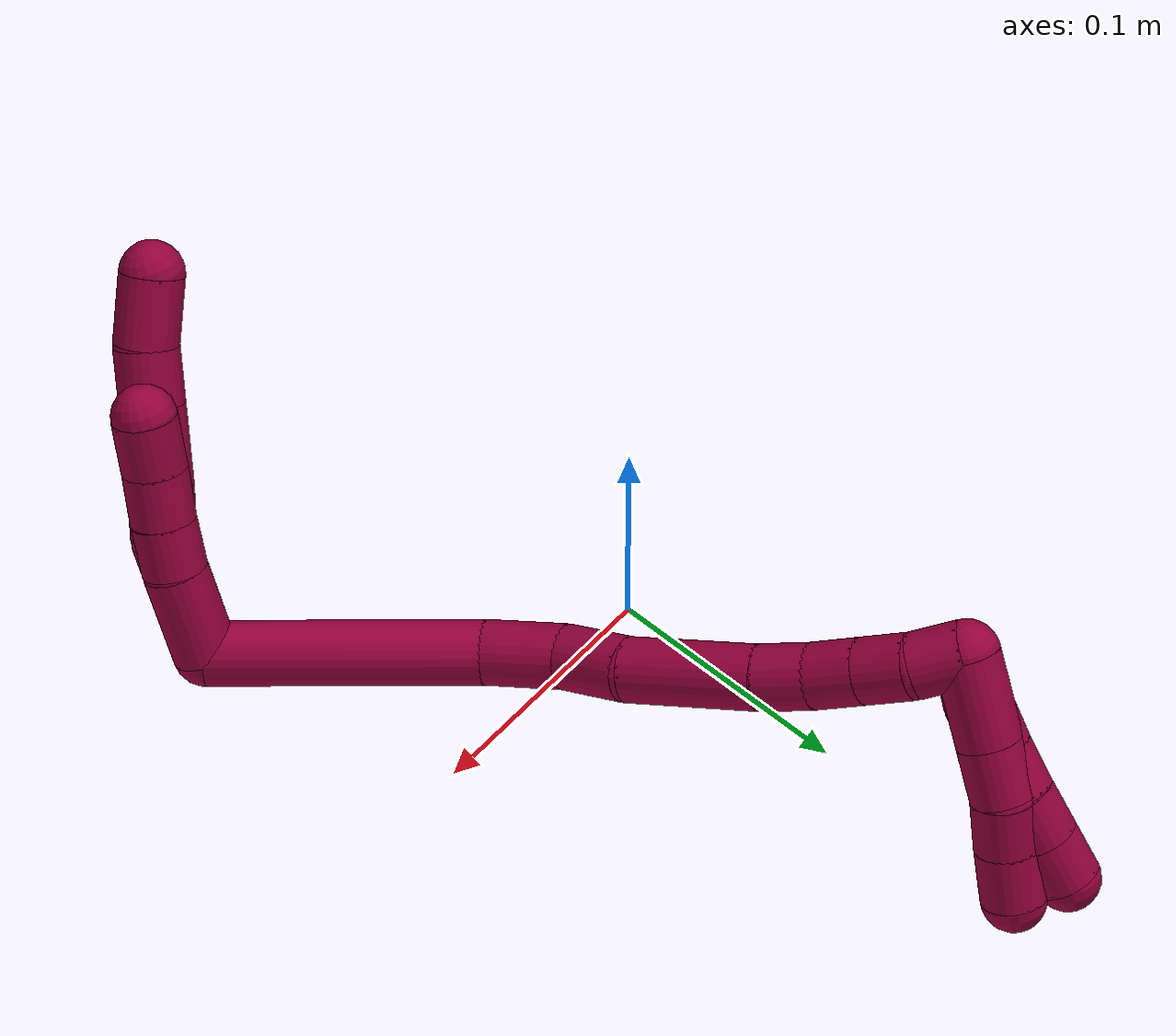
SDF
<sdf version="1.7">
 <world name="default">
  <model name="8">
   <static>0</static>
   <link name="8">
    <collision name="collision-cylinder-e_1_2_8">
     <pose>-0.001476 -0.002098 0.024251 0.086309 -0.060553 -0.002616</pose>
     <geometry><cylinder><radius>0.0125</radius><length>0.048772</length></cylinder></geometry>
     <surface>
      <friction><ode><mu>1.16</mu><mu2>1.16</mu2><slip1>0</slip1><slip2>0</slip2></ode></friction>
      <contact><ode><kp>1e+06</kp><kd>1</kd><max_vel>0</max_vel><min_depth>0.001</min_depth></ode></contact>
     </surface>
    </collision>
    <visual name="visual-cylinder-e_1_2_8">
     <pose>-0.001476 -0.002098 0.024251 0.086309 -0.060553 -0.002616</pose>
     <geometry><cylinder><radius>0.0125</radius><length>0.048772</length></cylinder></geometry>
     <material><ambient>0.584314 0 0.227451 1</ambient></material>
    </visual>
    <collision name="collision-cylinder-e_2_8_9">
     <pose>-0.006339 -0.0039 0.057914 -0.031525 -0.345296 0.005498</pose>
     <geometry><cylinder><radius>0.0125</radius><length>0.020017</length></cylinder></geometry>
     <surface>
      <friction><ode><mu>1.16</mu><mu2>1.16</mu2><slip1>0</slip1><slip2>0</slip2></ode></friction>
      <contact><ode><kp>1e+06</kp><kd>1</kd><max_vel>0</max_vel><min_depth>0.001</min_depth></ode></contact>
     </surface>
    </collision>
    <visual name="visual-cylinder-e_2_8_9">
     <pose>-0.006339 -0.0039 0.057914 -0.031525 -0.345296 0.005498</pose>
     <geometry><cylinder><radius>0.0125</radius><length>0.020017</length></cylinder></geometry>
     <material><ambient>0.584314 0 0.227451 1</ambient></material>
    </visual>
    <collision name="collision-cylinder-e_3_9_10">
     <pose>-0.013813 -0.002904 0.082504 -0.046024 -0.262745 0.006082</pose>
     <geometry><cylinder><radius>0.0125</radius><length>0.031466</length></cylinder></geometry>
     <surface>
      <friction><ode><mu>1.16</mu><mu2>1.16</mu2><slip1>0</slip1><slip2>0</slip2></ode></friction>
      <contact><ode><kp>1e+06</kp><kd>1</kd><max_vel>0</max_vel><min_depth>0.001</min_depth></ode></contact>
     </surface>
    </collision>
    <visual name="visual-cylinder-e_3_9_10">
     <pose>-0.013813 -0.002904 0.082504 -0.046024 -0.262745 0.006082</pose>
     <geometry><cylinder><radius>0.0125</radius><length>0.031466</length></cylinder></geometry>
     <material><ambient>0.584314 0 0.227451 1</ambient></material>
    </visual>
    <collision name="collision-cylinder-e_4_10_11">
     <pose>-0.020816 -0.001707 0.108543 -0.045777 -0.262079 0.006034</pose>
     <geometry><cylinder><radius>0.0125</radius><length>0.022516</length></cylinder></geometry>
     <surface>
      <friction><ode><mu>1.16</mu><mu2>1.16</mu2><slip1>0</slip1><slip2>0</slip2></ode></friction>
      <contact><ode><kp>1e+06</kp><kd>1</kd><max_vel>0</max_vel><min_depth>0.001</min_depth></ode></contact>
     </surface>
    </collision>
    <visual name="visual-cylinder-e_4_10_11">
     <pose>-0.020816 -0.001707 0.108543 -0.045777 -0.262079 0.006034</pose>
     <geometry><cylinder><radius>0.0125</radius><length>0.022516</length></cylinder></geometry>
     <material><ambient>0.584314 0 0.227451 1</ambient></material>
    </visual>
    <collision name="collision-cylinder-e_5_11_6">
     <pose>-0.02867 0.001276 0.131847 -0.197196 -0.371119 0.037134</pose>
     <geometry><cylinder><radius>0.0125</radius><length>0.02723</length></cylinder></geometry>
     <surface>
      <friction><ode><mu>1.16</mu><mu2>1.16</mu2><slip1>0</slip1><slip2>0</slip2></ode></friction>
      <contact><ode><kp>1e+06</kp><kd>1</kd><max_vel>0</max_vel><min_depth>0.001</min_depth></ode></contact>
     </surface>
    </collision>
    <visual name="visual-cylinder-e_5_11_6">
     <pose>-0.02867 0.001276 0.131847 -0.197196 -0.371119 0.037134</pose>
     <geometry><cylinder><radius>0.0125</radius><length>0.02723</length></cylinder></geometry>
     <material><ambient>0.584314 0 0.227451 1</ambient></material>
    </visual>
    <collision name="collision-cylinder-e_1_2_12">
     <pose>0.000305 -0.000179 0.018521 0.009651 0.016445 7.9e-05</pose>
     <geometry><cylinder><radius>0.0125</radius><length>0.037048</length></cylinder></geometry>
     <surface>
      <friction><ode><mu>1.16</mu><mu2>1.16</mu2><slip1>0</slip1><slip2>0</slip2></ode></friction>
      <contact><ode><kp>1e+06</kp><kd>1</kd><max_vel>0</max_vel><min_depth>0.001</min_depth></ode></contact>
     </surface>
    </collision>
    <visual name="visual-cylinder-e_1_2_12">
     <pose>0.000305 -0.000179 0.018521 0.009651 0.016445 7.9e-05</pose>
     <geometry><cylinder><radius>0.0125</radius><length>0.037048</length></cylinder></geometry>
     <material><ambient>0.584314 0 0.227451 1</ambient></material>
    </visual>
    <collision name="collision-cylinder-e_2_12_13">
     <pose>-0.000438 -6.9e-05 0.047158 -0.028548 -0.103085 0.001473</pose>
     <geometry><cylinder><radius>0.0125</radius><length>0.020349</length></cylinder></geometry>
     <surface>
      <friction><ode><mu>1.16</mu><mu2>1.16</mu2><slip1>0</slip1><slip2>0</slip2></ode></friction>
      <contact><ode><kp>1e+06</kp><kd>1</kd><max_vel>0</max_vel><min_depth>0.001</min_depth></ode></contact>
     </surface>
    </collision>
    <visual name="visual-cylinder-e_2_12_13">
     <pose>-0.000438 -6.9e-05 0.047158 -0.028548 -0.103085 0.001473</pose>
     <geometry><cylinder><radius>0.0125</radius><length>0.020349</length></cylinder></geometry>
     <material><ambient>0.584314 0 0.227451 1</ambient></material>
    </visual>
    <collision name="collision-cylinder-e_3_13_14">
     <pose>-0.002853 0.001072 0.067579 -0.082472 -0.131577 0.005437</pose>
     <geometry><cylinder><radius>0.0125</radius><length>0.020861</length></cylinder></geometry>
     <surface>
      <friction><ode><mu>1.16</mu><mu2>1.16</mu2><slip1>0</slip1><slip2>0</slip2></ode></friction>
      <contact><ode><kp>1e+06</kp><kd>1</kd><max_vel>0</max_vel><min_depth>0.001</min_depth></ode></contact>
     </surface>
    </collision>
    <visual name="visual-cylinder-e_3_13_14">
     <pose>-0.002853 0.001072 0.067579 -0.082472 -0.131577 0.005437</pose>
     <geometry><cylinder><radius>0.0125</radius><length>0.020861</length></cylinder></geometry>
     <material><ambient>0.584314 0 0.227451 1</ambient></material>
    </visual>
    <collision name="collision-cylinder-e_4_14_5">
     <pose>-0.004848 0.003128 0.08867 -0.111154 -0.057665 0.003209</pose>
     <geometry><cylinder><radius>0.0125</radius><length>0.021742</length></cylinder></geometry>
     <surface>
      <friction><ode><mu>1.16</mu><mu2>1.16</mu2><slip1>0</slip1><slip2>0</slip2></ode></friction>
      <contact><ode><kp>1e+06</kp><kd>1</kd><max_vel>0</max_vel><min_depth>0.001</min_depth></ode></contact>
     </surface>
    </collision>
    <visual name="visual-cylinder-e_4_14_5">
     <pose>-0.004848 0.003128 0.08867 -0.111154 -0.057665 0.003209</pose>
     <geometry><cylinder><radius>0.0125</radius><length>0.021742</length></cylinder></geometry>
     <material><ambient>0.584314 0 0.227451 1</ambient></material>
    </visual>
    <collision name="collision-cylinder-e_1_2_15">
     <pose>-0.027029 0.043662 -0.012545 -1.85058 -0.53672 0.700183</pose>
     <geometry><cylinder><radius>0.0125</radius><length>0.105723</length></cylinder></geometry>
     <surface>
      <friction><ode><mu>1.16</mu><mu2>1.16</mu2><slip1>0</slip1><slip2>0</slip2></ode></friction>
      <contact><ode><kp>1e+06</kp><kd>1</kd><max_vel>0</max_vel><min_depth>0.001</min_depth></ode></contact>
     </surface>
    </collision>
    <visual name="visual-cylinder-e_1_2_15">
     <pose>-0.027029 0.043662 -0.012545 -1.85058 -0.53672 0.700183</pose>
     <geometry><cylinder><radius>0.0125</radius><length>0.105723</length></cylinder></geometry>
     <material><ambient>0.584314 0 0.227451 1</ambient></material>
    </visual>
    <collision name="collision-cylinder-e_2_15_16">
     <pose>-0.058306 0.102716 -0.027338 -1.71581 -0.266556 0.3077</pose>
     <geometry><cylinder><radius>0.0125</radius><length>0.032249</length></cylinder></geometry>
     <surface>
      <friction><ode><mu>1.16</mu><mu2>1.16</mu2><slip1>0</slip1><slip2>0</slip2></ode></friction>
      <contact><ode><kp>1e+06</kp><kd>1</kd><max_vel>0</max_vel><min_depth>0.001</min_depth></ode></contact>
     </surface>
    </collision>
    <visual name="visual-cylinder-e_2_15_16">
     <pose>-0.058306 0.102716 -0.027338 -1.71581 -0.266556 0.3077</pose>
     <geometry><cylinder><radius>0.0125</radius><length>0.032249</length></cylinder></geometry>
     <material><ambient>0.584314 0 0.227451 1</ambient></material>
    </visual>
    <collision name="collision-cylinder-e_3_16_17">
     <pose>-0.062108 0.132177 -0.030853 -1.66056 0.031496 -0.034457</pose>
     <geometry><cylinder><radius>0.0125</radius><length>0.028267</length></cylinder></geometry>
     <surface>
      <friction><ode><mu>1.16</mu><mu2>1.16</mu2><slip1>0</slip1><slip2>0</slip2></ode></friction>
      <contact><ode><kp>1e+06</kp><kd>1</kd><max_vel>0</max_vel><min_depth>0.001</min_depth></ode></contact>
     </surface>
    </collision>
    <visual name="visual-cylinder-e_3_16_17">
     <pose>-0.062108 0.132177 -0.030853 -1.66056 0.031496 -0.034457</pose>
     <geometry><cylinder><radius>0.0125</radius><length>0.028267</length></cylinder></geometry>
     <material><ambient>0.584314 0 0.227451 1</ambient></material>
    </visual>
    <collision name="collision-cylinder-e_4_17_18">
     <pose>-0.066334 0.172144 -0.034402 -1.65871 -0.177778 0.194039</pose>
     <geometry><cylinder><radius>0.0125</radius><length>0.052827</length></cylinder></geometry>
     <surface>
      <friction><ode><mu>1.16</mu><mu2>1.16</mu2><slip1>0</slip1><slip2>0</slip2></ode></friction>
      <contact><ode><kp>1e+06</kp><kd>1</kd><max_vel>0</max_vel><min_depth>0.001</min_depth></ode></contact>
     </surface>
    </collision>
    <visual name="visual-cylinder-e_4_17_18">
     <pose>-0.066334 0.172144 -0.034402 -1.65871 -0.177778 0.194039</pose>
     <geometry><cylinder><radius>0.0125</radius><length>0.052827</length></cylinder></geometry>
     <material><ambient>0.584314 0 0.227451 1</ambient></material>
    </visual>
    <collision name="collision-cylinder-e_5_18_19">
     <pose>-0.073611 0.208067 -0.03705 -1.6072 -0.25409 0.263405</pose>
     <geometry><cylinder><radius>0.0125</radius><length>0.020732</length></cylinder></geometry>
     <surface>
      <friction><ode><mu>1.16</mu><mu2>1.16</mu2><slip1>0</slip1><slip2>0</slip2></ode></friction>
      <contact><ode><kp>1e+06</kp><kd>1</kd><max_vel>0</max_vel><min_depth>0.001</min_depth></ode></contact>
     </surface>
    </collision>
    <visual name="visual-cylinder-e_5_18_19">
     <pose>-0.073611 0.208067 -0.03705 -1.6072 -0.25409 0.263405</pose>
     <geometry><cylinder><radius>0.0125</radius><length>0.020732</length></cylinder></geometry>
     <material><ambient>0.584314 0 0.227451 1</ambient></material>
    </visual>
    <collision name="collision-cylinder-e_6_19_20">
     <pose>-0.078262 0.227918 -0.036694 -1.49756 -0.204726 0.190347</pose>
     <geometry><cylinder><radius>0.0125</radius><length>0.020121</length></cylinder></geometry>
     <surface>
      <friction><ode><mu>1.16</mu><mu2>1.16</mu2><slip1>0</slip1><slip2>0</slip2></ode></friction>
      <contact><ode><kp>1e+06</kp><kd>1</kd><max_vel>0</max_vel><min_depth>0.001</min_depth></ode></contact>
     </surface>
    </collision>
    <visual name="visual-cylinder-e_6_19_20">
     <pose>-0.078262 0.227918 -0.036694 -1.49756 -0.204726 0.190347</pose>
     <geometry><cylinder><radius>0.0125</radius><length>0.020121</length></cylinder></geometry>
     <material><ambient>0.584314 0 0.227451 1</ambient></material>
    </visual>
    <collision name="collision-cylinder-e_7_20_21">
     <pose>-0.082235 0.247533 -0.035206 -1.49257 -0.193802 0.179287</pose>
     <geometry><cylinder><radius>0.0125</radius><length>0.020018</length></cylinder></geometry>
     <surface>
      <friction><ode><mu>1.16</mu><mu2>1.16</mu2><slip1>0</slip1><slip2>0</slip2></ode></friction>
      <contact><ode><kp>1e+06</kp><kd>1</kd><max_vel>0</max_vel><min_depth>0.001</min_depth></ode></contact>
     </surface>
    </collision>
    <visual name="visual-cylinder-e_7_20_21">
     <pose>-0.082235 0.247533 -0.035206 -1.49257 -0.193802 0.179287</pose>
     <geometry><cylinder><radius>0.0125</radius><length>0.020018</length></cylinder></geometry>
     <material><ambient>0.584314 0 0.227451 1</ambient></material>
    </visual>
    <collision name="collision-cylinder-e_8_21_1">
     <pose>-0.08845 0.266344 -0.033486 -1.46565 -0.441583 0.398654</pose>
     <geometry><cylinder><radius>0.0125</radius><length>0.020063</length></cylinder></geometry>
     <surface>
      <friction><ode><mu>1.16</mu><mu2>1.16</mu2><slip1>0</slip1><slip2>0</slip2></ode></friction>
      <contact><ode><kp>1e+06</kp><kd>1</kd><max_vel>0</max_vel><min_depth>0.001</min_depth></ode></contact>
     </surface>
    </collision>
    <visual name="visual-cylinder-e_8_21_1">
     <pose>-0.08845 0.266344 -0.033486 -1.46565 -0.441583 0.398654</pose>
     <geometry><cylinder><radius>0.0125</radius><length>0.020063</length></cylinder></geometry>
     <material><ambient>0.584314 0 0.227451 1</ambient></material>
    </visual>
    <collision name="collision-cylinder-e_1_1_22">
     <pose>-0.090392 0.277077 -0.04971 -3.04216 0.134993 -1.87251</pose>
     <geometry><cylinder><radius>0.0125</radius><length>0.034839</length></cylinder></geometry>
     <surface>
      <friction><ode><mu>1.16</mu><mu2>1.16</mu2><slip1>0</slip1><slip2>0</slip2></ode></friction>
      <contact><ode><kp>1e+06</kp><kd>1</kd><max_vel>0</max_vel><min_depth>0.001</min_depth></ode></contact>
     </surface>
    </collision>
    <visual name="visual-cylinder-e_1_1_22">
     <pose>-0.090392 0.277077 -0.04971 -3.04216 0.134993 -1.87251</pose>
     <geometry><cylinder><radius>0.0125</radius><length>0.034839</length></cylinder></geometry>
     <material><ambient>0.584314 0 0.227451 1</ambient></material>
    </visual>
    <collision name="collision-cylinder-e_2_22_23">
     <pose>-0.086559 0.27988 -0.07808 -3.04456 0.131624 -1.87168</pose>
     <geometry><cylinder><radius>0.0125</radius><length>0.022691</length></cylinder></geometry>
     <surface>
      <friction><ode><mu>1.16</mu><mu2>1.16</mu2><slip1>0</slip1><slip2>0</slip2></ode></friction>
      <contact><ode><kp>1e+06</kp><kd>1</kd><max_vel>0</max_vel><min_depth>0.001</min_depth></ode></contact>
     </surface>
    </collision>
    <visual name="visual-cylinder-e_2_22_23">
     <pose>-0.086559 0.27988 -0.07808 -3.04456 0.131624 -1.87168</pose>
     <geometry><cylinder><radius>0.0125</radius><length>0.022691</length></cylinder></geometry>
     <material><ambient>0.584314 0 0.227451 1</ambient></material>
    </visual>
    <collision name="collision-cylinder-e_3_23_24">
     <pose>-0.084131 0.279807 -0.099485 3.02822 0.091129 1.35373</pose>
     <geometry><cylinder><radius>0.0125</radius><length>0.020639</length></cylinder></geometry>
     <surface>
      <friction><ode><mu>1.16</mu><mu2>1.16</mu2><slip1>0</slip1><slip2>0</slip2></ode></friction>
      <contact><ode><kp>1e+06</kp><kd>1</kd><max_vel>0</max_vel><min_depth>0.001</min_depth></ode></contact>
     </surface>
    </collision>
    <visual name="visual-cylinder-e_3_23_24">
     <pose>-0.084131 0.279807 -0.099485 3.02822 0.091129 1.35373</pose>
     <geometry><cylinder><radius>0.0125</radius><length>0.020639</length></cylinder></geometry>
     <material><ambient>0.584314 0 0.227451 1</ambient></material>
    </visual>
    <collision name="collision-cylinder-e_4_24_4">
     <pose>-0.08202 0.277994 -0.120529 3.08164 0.107576 2.12532</pose>
     <geometry><cylinder><radius>0.0125</radius><length>0.021831</length></cylinder></geometry>
     <surface>
      <friction><ode><mu>1.16</mu><mu2>1.16</mu2><slip1>0</slip1><slip2>0</slip2></ode></friction>
      <contact><ode><kp>1e+06</kp><kd>1</kd><max_vel>0</max_vel><min_depth>0.001</min_depth></ode></contact>
     </surface>
    </collision>
    <visual name="visual-cylinder-e_4_24_4">
     <pose>-0.08202 0.277994 -0.120529 3.08164 0.107576 2.12532</pose>
     <geometry><cylinder><radius>0.0125</radius><length>0.021831</length></cylinder></geometry>
     <material><ambient>0.584314 0 0.227451 1</ambient></material>
    </visual>
    <collision name="collision-cylinder-e_1_1_25">
     <pose>-0.09243 0.275221 -0.042529 3.1274 0.030661 2.27486</pose>
     <geometry><cylinder><radius>0.0125</radius><length>0.02</length></cylinder></geometry>
     <surface>
      <friction><ode><mu>1.16</mu><mu2>1.16</mu2><slip1>0</slip1><slip2>0</slip2></ode></friction>
      <contact><ode><kp>1e+06</kp><kd>1</kd><max_vel>0</max_vel><min_depth>0.001</min_depth></ode></contact>
     </surface>
    </collision>
    <visual name="visual-cylinder-e_1_1_25">
     <pose>-0.09243 0.275221 -0.042529 3.1274 0.030661 2.27486</pose>
     <geometry><cylinder><radius>0.0125</radius><length>0.02</length></cylinder></geometry>
     <material><ambient>0.584314 0 0.227451 1</ambient></material>
    </visual>
    <collision name="collision-cylinder-e_2_25_26">
     <pose>-0.092033 0.277007 -0.062335 -2.94758 0.009025 -0.09268</pose>
     <geometry><cylinder><radius>0.0125</radius><length>0.02</length></cylinder></geometry>
     <surface>
      <friction><ode><mu>1.16</mu><mu2>1.16</mu2><slip1>0</slip1><slip2>0</slip2></ode></friction>
      <contact><ode><kp>1e+06</kp><kd>1</kd><max_vel>0</max_vel><min_depth>0.001</min_depth></ode></contact>
     </surface>
    </collision>
    <visual name="visual-cylinder-e_2_25_26">
     <pose>-0.092033 0.277007 -0.062335 -2.94758 0.009025 -0.09268</pose>
     <geometry><cylinder><radius>0.0125</radius><length>0.02</length></cylinder></geometry>
     <material><ambient>0.584314 0 0.227451 1</ambient></material>
    </visual>
    <collision name="collision-cylinder-e_3_26_27">
     <pose>-0.092003 0.281406 -0.081837 -2.89194 -0.006 0.047806</pose>
     <geometry><cylinder><radius>0.0125</radius><length>0.02</length></cylinder></geometry>
     <surface>
      <friction><ode><mu>1.16</mu><mu2>1.16</mu2><slip1>0</slip1><slip2>0</slip2></ode></friction>
      <contact><ode><kp>1e+06</kp><kd>1</kd><max_vel>0</max_vel><min_depth>0.001</min_depth></ode></contact>
     </surface>
    </collision>
    <visual name="visual-cylinder-e_3_26_27">
     <pose>-0.092003 0.281406 -0.081837 -2.89194 -0.006 0.047806</pose>
     <geometry><cylinder><radius>0.0125</radius><length>0.02</length></cylinder></geometry>
     <material><ambient>0.584314 0 0.227451 1</ambient></material>
    </visual>
    <collision name="collision-cylinder-e_4_27_28">
     <pose>-0.093046 0.285992 -0.101251 -2.92737 -0.098416 0.859005</pose>
     <geometry><cylinder><radius>0.0125</radius><length>0.02</length></cylinder></geometry>
     <surface>
      <friction><ode><mu>1.16</mu><mu2>1.16</mu2><slip1>0</slip1><slip2>0</slip2></ode></friction>
      <contact><ode><kp>1e+06</kp><kd>1</kd><max_vel>0</max_vel><min_depth>0.001</min_depth></ode></contact>
     </surface>
    </collision>
    <visual name="visual-cylinder-e_4_27_28">
     <pose>-0.093046 0.285992 -0.101251 -2.92737 -0.098416 0.859005</pose>
     <geometry><cylinder><radius>0.0125</radius><length>0.02</length></cylinder></geometry>
     <material><ambient>0.584314 0 0.227451 1</ambient></material>
    </visual>
    <collision name="collision-cylinder-e_5_28_3">
     <pose>-0.095008 0.290225 -0.120699 -2.92717 -0.098119 0.856021</pose>
     <geometry><cylinder><radius>0.0125</radius><length>0.02</length></cylinder></geometry>
     <surface>
      <friction><ode><mu>1.16</mu><mu2>1.16</mu2><slip1>0</slip1><slip2>0</slip2></ode></friction>
      <contact><ode><kp>1e+06</kp><kd>1</kd><max_vel>0</max_vel><min_depth>0.001</min_depth></ode></contact>
     </surface>
    </collision>
    <visual name="visual-cylinder-e_5_28_3">
     <pose>-0.095008 0.290225 -0.120699 -2.92717 -0.098119 0.856021</pose>
     <geometry><cylinder><radius>0.0125</radius><length>0.02</length></cylinder></geometry>
     <material><ambient>0.584314 0 0.227451 1</ambient></material>
    </visual>
    <collision name="collision-sphere-3">
     <pose>-0.095987 0.292343 -0.130423 0 -0 0</pose>
     <geometry><sphere><radius>0.0125</radius></sphere></geometry>
     <surface>
      <friction><ode><mu>1.16</mu><mu2>1.16</mu2><slip1>0</slip1><slip2>0</slip2></ode></friction>
      <contact><ode><kp>1e+06</kp><kd>1</kd><max_vel>0</max_vel><min_depth>0.001</min_depth></ode></contact>
     </surface>
    </collision>
    <visual name="visual-sphere-3">
     <pose>-0.095987 0.292343 -0.130423 0 -0 0</pose>
     <geometry><sphere><radius>0.0125</radius></sphere></geometry>
     <material><ambient>0.584314 0 0.227451 1</ambient></material>
    </visual>
    <collision name="collision-sphere-28">
     <pose>-0.094028 0.288108 -0.110975 0 -0 0</pose>
     <geometry><sphere><radius>0.0125</radius></sphere></geometry>
     <surface>
      <friction><ode><mu>1.16</mu><mu2>1.16</mu2><slip1>0</slip1><slip2>0</slip2></ode></friction>
      <contact><ode><kp>1e+06</kp><kd>1</kd><max_vel>0</max_vel><min_depth>0.001</min_depth></ode></contact>
     </surface>
    </collision>
    <visual name="visual-sphere-28">
     <pose>-0.094028 0.288108 -0.110975 0 -0 0</pose>
     <geometry><sphere><radius>0.0125</radius></sphere></geometry>
     <material><ambient>0.584314 0 0.227451 1</ambient></material>
    </visual>
    <collision name="collision-sphere-27">
     <pose>-0.092063 0.283876 -0.091527 0 -0 0</pose>
     <geometry><sphere><radius>0.0125</radius></sphere></geometry>
     <surface>
      <friction><ode><mu>1.16</mu><mu2>1.16</mu2><slip1>0</slip1><slip2>0</slip2></ode></friction>
      <contact><ode><kp>1e+06</kp><kd>1</kd><max_vel>0</max_vel><min_depth>0.001</min_depth></ode></contact>
     </surface>
    </collision>
    <visual name="visual-sphere-27">
     <pose>-0.092063 0.283876 -0.091527 0 -0 0</pose>
     <geometry><sphere><radius>0.0125</radius></sphere></geometry>
     <material><ambient>0.584314 0 0.227451 1</ambient></material>
    </visual>
    <collision name="collision-sphere-26">
     <pose>-0.091943 0.278935 -0.072147 0 -0 0</pose>
     <geometry><sphere><radius>0.0125</radius></sphere></geometry>
     <surface>
      <friction><ode><mu>1.16</mu><mu2>1.16</mu2><slip1>0</slip1><slip2>0</slip2></ode></friction>
      <contact><ode><kp>1e+06</kp><kd>1</kd><max_vel>0</max_vel><min_depth>0.001</min_depth></ode></contact>
     </surface>
    </collision>
    <visual name="visual-sphere-26">
     <pose>-0.091943 0.278935 -0.072147 0 -0 0</pose>
     <geometry><sphere><radius>0.0125</radius></sphere></geometry>
     <material><ambient>0.584314 0 0.227451 1</ambient></material>
    </visual>
    <collision name="collision-sphere-25">
     <pose>-0.092124 0.275079 -0.052523 0 -0 0</pose>
     <geometry><sphere><radius>0.0125</radius></sphere></geometry>
     <surface>
      <friction><ode><mu>1.16</mu><mu2>1.16</mu2><slip1>0</slip1><slip2>0</slip2></ode></friction>
      <contact><ode><kp>1e+06</kp><kd>1</kd><max_vel>0</max_vel><min_depth>0.001</min_depth></ode></contact>
     </surface>
    </collision>
    <visual name="visual-sphere-25">
     <pose>-0.092124 0.275079 -0.052523 0 -0 0</pose>
     <geometry><sphere><radius>0.0125</radius></sphere></geometry>
     <material><ambient>0.584314 0 0.227451 1</ambient></material>
    </visual>
    <collision name="collision-sphere-4">
     <pose>-0.080848 0.277344 -0.131362 0 -0 0</pose>
     <geometry><sphere><radius>0.0125</radius></sphere></geometry>
     <surface>
      <friction><ode><mu>1.16</mu><mu2>1.16</mu2><slip1>0</slip1><slip2>0</slip2></ode></friction>
      <contact><ode><kp>1e+06</kp><kd>1</kd><max_vel>0</max_vel><min_depth>0.001</min_depth></ode></contact>
     </surface>
    </collision>
    <visual name="visual-sphere-4">
     <pose>-0.080848 0.277344 -0.131362 0 -0 0</pose>
     <geometry><sphere><radius>0.0125</radius></sphere></geometry>
     <material><ambient>0.584314 0 0.227451 1</ambient></material>
    </visual>
    <collision name="collision-sphere-24">
     <pose>-0.083192 0.278644 -0.109696 0 -0 0</pose>
     <geometry><sphere><radius>0.0125</radius></sphere></geometry>
     <surface>
      <friction><ode><mu>1.16</mu><mu2>1.16</mu2><slip1>0</slip1><slip2>0</slip2></ode></friction>
      <contact><ode><kp>1e+06</kp><kd>1</kd><max_vel>0</max_vel><min_depth>0.001</min_depth></ode></contact>
     </surface>
    </collision>
    <visual name="visual-sphere-24">
     <pose>-0.083192 0.278644 -0.109696 0 -0 0</pose>
     <geometry><sphere><radius>0.0125</radius></sphere></geometry>
     <material><ambient>0.584314 0 0.227451 1</ambient></material>
    </visual>
    <collision name="collision-sphere-23">
     <pose>-0.08507 0.28097 -0.089275 0 -0 0</pose>
     <geometry><sphere><radius>0.0125</radius></sphere></geometry>
     <surface>
      <friction><ode><mu>1.16</mu><mu2>1.16</mu2><slip1>0</slip1><slip2>0</slip2></ode></friction>
      <contact><ode><kp>1e+06</kp><kd>1</kd><max_vel>0</max_vel><min_depth>0.001</min_depth></ode></contact>
     </surface>
    </collision>
    <visual name="visual-sphere-23">
     <pose>-0.08507 0.28097 -0.089275 0 -0 0</pose>
     <geometry><sphere><radius>0.0125</radius></sphere></geometry>
     <material><ambient>0.584314 0 0.227451 1</ambient></material>
    </visual>
    <collision name="collision-sphere-22">
     <pose>-0.088048 0.27879 -0.066886 0 -0 0</pose>
     <geometry><sphere><radius>0.0125</radius></sphere></geometry>
     <surface>
      <friction><ode><mu>1.16</mu><mu2>1.16</mu2><slip1>0</slip1><slip2>0</slip2></ode></friction>
      <contact><ode><kp>1e+06</kp><kd>1</kd><max_vel>0</max_vel><min_depth>0.001</min_depth></ode></contact>
     </surface>
    </collision>
    <visual name="visual-sphere-22">
     <pose>-0.088048 0.27879 -0.066886 0 -0 0</pose>
     <geometry><sphere><radius>0.0125</radius></sphere></geometry>
     <material><ambient>0.584314 0 0.227451 1</ambient></material>
    </visual>
    <collision name="collision-sphere-1">
     <pose>-0.092737 0.275363 -0.032534 0 -0 0</pose>
     <geometry><sphere><radius>0.0125</radius></sphere></geometry>
     <surface>
      <friction><ode><mu>1.16</mu><mu2>1.16</mu2><slip1>0</slip1><slip2>0</slip2></ode></friction>
      <contact><ode><kp>1e+06</kp><kd>1</kd><max_vel>0</max_vel><min_depth>0.001</min_depth></ode></contact>
     </surface>
    </collision>
    <visual name="visual-sphere-1">
     <pose>-0.092737 0.275363 -0.032534 0 -0 0</pose>
     <geometry><sphere><radius>0.0125</radius></sphere></geometry>
     <material><ambient>0.584314 0 0.227451 1</ambient></material>
    </visual>
    <collision name="collision-sphere-21">
     <pose>-0.084162 0.257325 -0.034438 0 -0 0</pose>
     <geometry><sphere><radius>0.0125</radius></sphere></geometry>
     <surface>
      <friction><ode><mu>1.16</mu><mu2>1.16</mu2><slip1>0</slip1><slip2>0</slip2></ode></friction>
      <contact><ode><kp>1e+06</kp><kd>1</kd><max_vel>0</max_vel><min_depth>0.001</min_depth></ode></contact>
     </surface>
    </collision>
    <visual name="visual-sphere-21">
     <pose>-0.084162 0.257325 -0.034438 0 -0 0</pose>
     <geometry><sphere><radius>0.0125</radius></sphere></geometry>
     <material><ambient>0.584314 0 0.227451 1</ambient></material>
    </visual>
    <collision name="collision-sphere-6">
     <pose>-0.033608 0.003762 0.144289 0 -0 0</pose>
     <geometry><sphere><radius>0.0125</radius></sphere></geometry>
     <surface>
      <friction><ode><mu>1.16</mu><mu2>1.16</mu2><slip1>0</slip1><slip2>0</slip2></ode></friction>
      <contact><ode><kp>1e+06</kp><kd>1</kd><max_vel>0</max_vel><min_depth>0.001</min_depth></ode></contact>
     </surface>
    </collision>
    <visual name="visual-sphere-6">
     <pose>-0.033608 0.003762 0.144289 0 -0 0</pose>
     <geometry><sphere><radius>0.0125</radius></sphere></geometry>
     <material><ambient>0.584314 0 0.227451 1</ambient></material>
    </visual>
    <collision name="collision-sphere-11">
     <pose>-0.023733 -0.00121 0.119405 0 -0 0</pose>
     <geometry><sphere><radius>0.0125</radius></sphere></geometry>
     <surface>
      <friction><ode><mu>1.16</mu><mu2>1.16</mu2><slip1>0</slip1><slip2>0</slip2></ode></friction>
      <contact><ode><kp>1e+06</kp><kd>1</kd><max_vel>0</max_vel><min_depth>0.001</min_depth></ode></contact>
     </surface>
    </collision>
    <visual name="visual-sphere-11">
     <pose>-0.023733 -0.00121 0.119405 0 -0 0</pose>
     <geometry><sphere><radius>0.0125</radius></sphere></geometry>
     <material><ambient>0.584314 0 0.227451 1</ambient></material>
    </visual>
    <collision name="collision-sphere-10">
     <pose>-0.017899 -0.002205 0.097681 0 -0 0</pose>
     <geometry><sphere><radius>0.0125</radius></sphere></geometry>
     <surface>
      <friction><ode><mu>1.16</mu><mu2>1.16</mu2><slip1>0</slip1><slip2>0</slip2></ode></friction>
      <contact><ode><kp>1e+06</kp><kd>1</kd><max_vel>0</max_vel><min_depth>0.001</min_depth></ode></contact>
     </surface>
    </collision>
    <visual name="visual-sphere-10">
     <pose>-0.017899 -0.002205 0.097681 0 -0 0</pose>
     <geometry><sphere><radius>0.0125</radius></sphere></geometry>
     <material><ambient>0.584314 0 0.227451 1</ambient></material>
    </visual>
    <collision name="collision-sphere-9">
     <pose>-0.009727 -0.003603 0.067327 0 -0 0</pose>
     <geometry><sphere><radius>0.0125</radius></sphere></geometry>
     <surface>
      <friction><ode><mu>1.16</mu><mu2>1.16</mu2><slip1>0</slip1><slip2>0</slip2></ode></friction>
      <contact><ode><kp>1e+06</kp><kd>1</kd><max_vel>0</max_vel><min_depth>0.001</min_depth></ode></contact>
     </surface>
    </collision>
    <visual name="visual-sphere-9">
     <pose>-0.009727 -0.003603 0.067327 0 -0 0</pose>
     <geometry><sphere><radius>0.0125</radius></sphere></geometry>
     <material><ambient>0.584314 0 0.227451 1</ambient></material>
    </visual>
    <collision name="collision-sphere-2">
     <geometry><sphere><radius>0.0125</radius></sphere></geometry>
     <surface>
      <friction><ode><mu>1.16</mu><mu2>1.16</mu2><slip1>0</slip1><slip2>0</slip2></ode></friction>
      <contact><ode><kp>1e+06</kp><kd>1</kd><max_vel>0</max_vel><min_depth>0.001</min_depth></ode></contact>
     </surface>
    </collision>
    <visual name="visual-sphere-2">
     <geometry><sphere><radius>0.0125</radius></sphere></geometry>
     <material><ambient>0.584314 0 0.227451 1</ambient></material>
    </visual>
    <collision name="collision-sphere-19">
     <pose>-0.076217 0.218094 -0.037415 0 -0 0</pose>
     <geometry><sphere><radius>0.0125</radius></sphere></geometry>
     <surface>
      <friction><ode><mu>1.16</mu><mu2>1.16</mu2><slip1>0</slip1><slip2>0</slip2></ode></friction>
      <contact><ode><kp>1e+06</kp><kd>1</kd><max_vel>0</max_vel><min_depth>0.001</min_depth></ode></contact>
     </surface>
    </collision>
    <visual name="visual-sphere-19">
     <pose>-0.076217 0.218094 -0.037415 0 -0 0</pose>
     <geometry><sphere><radius>0.0125</radius></sphere></geometry>
     <material><ambient>0.584314 0 0.227451 1</ambient></material>
    </visual>
    <collision name="collision-sphere-8">
     <pose>-0.002951 -0.004197 0.048501 0 -0 0</pose>
     <geometry><sphere><radius>0.0125</radius></sphere></geometry>
     <surface>
      <friction><ode><mu>1.16</mu><mu2>1.16</mu2><slip1>0</slip1><slip2>0</slip2></ode></friction>
      <contact><ode><kp>1e+06</kp><kd>1</kd><max_vel>0</max_vel><min_depth>0.001</min_depth></ode></contact>
     </surface>
    </collision>
    <visual name="visual-sphere-8">
     <pose>-0.002951 -0.004197 0.048501 0 -0 0</pose>
     <geometry><sphere><radius>0.0125</radius></sphere></geometry>
     <material><ambient>0.584314 0 0.227451 1</ambient></material>
    </visual>
    <collision name="collision-sphere-12">
     <pose>0.000609 -0.000357 0.037041 0 -0 0</pose>
     <geometry><sphere><radius>0.0125</radius></sphere></geometry>
     <surface>
      <friction><ode><mu>1.16</mu><mu2>1.16</mu2><slip1>0</slip1><slip2>0</slip2></ode></friction>
      <contact><ode><kp>1e+06</kp><kd>1</kd><max_vel>0</max_vel><min_depth>0.001</min_depth></ode></contact>
     </surface>
    </collision>
    <visual name="visual-sphere-12">
     <pose>0.000609 -0.000357 0.037041 0 -0 0</pose>
     <geometry><sphere><radius>0.0125</radius></sphere></geometry>
     <material><ambient>0.584314 0 0.227451 1</ambient></material>
    </visual>
    <collision name="collision-sphere-13">
     <pose>-0.001485 0.00022 0.057274 0 -0 0</pose>
     <geometry><sphere><radius>0.0125</radius></sphere></geometry>
     <surface>
      <friction><ode><mu>1.16</mu><mu2>1.16</mu2><slip1>0</slip1><slip2>0</slip2></ode></friction>
      <contact><ode><kp>1e+06</kp><kd>1</kd><max_vel>0</max_vel><min_depth>0.001</min_depth></ode></contact>
     </surface>
    </collision>
    <visual name="visual-sphere-13">
     <pose>-0.001485 0.00022 0.057274 0 -0 0</pose>
     <geometry><sphere><radius>0.0125</radius></sphere></geometry>
     <material><ambient>0.584314 0 0.227451 1</ambient></material>
    </visual>
    <collision name="collision-sphere-14">
     <pose>-0.004222 0.001924 0.077884 0 -0 0</pose>
     <geometry><sphere><radius>0.0125</radius></sphere></geometry>
     <surface>
      <friction><ode><mu>1.16</mu><mu2>1.16</mu2><slip1>0</slip1><slip2>0</slip2></ode></friction>
      <contact><ode><kp>1e+06</kp><kd>1</kd><max_vel>0</max_vel><min_depth>0.001</min_depth></ode></contact>
     </surface>
    </collision>
    <visual name="visual-sphere-14">
     <pose>-0.004222 0.001924 0.077884 0 -0 0</pose>
     <geometry><sphere><radius>0.0125</radius></sphere></geometry>
     <material><ambient>0.584314 0 0.227451 1</ambient></material>
    </visual>
    <collision name="collision-sphere-5">
     <pose>-0.005475 0.004332 0.099456 0 -0 0</pose>
     <geometry><sphere><radius>0.0125</radius></sphere></geometry>
     <surface>
      <friction><ode><mu>1.16</mu><mu2>1.16</mu2><slip1>0</slip1><slip2>0</slip2></ode></friction>
      <contact><ode><kp>1e+06</kp><kd>1</kd><max_vel>0</max_vel><min_depth>0.001</min_depth></ode></contact>
     </surface>
    </collision>
    <visual name="visual-sphere-5">
     <pose>-0.005475 0.004332 0.099456 0 -0 0</pose>
     <geometry><sphere><radius>0.0125</radius></sphere></geometry>
     <material><ambient>0.584314 0 0.227451 1</ambient></material>
    </visual>
    <collision name="collision-sphere-15">
     <pose>-0.054058 0.087324 -0.025091 0 -0 0</pose>
     <geometry><sphere><radius>0.0125</radius></sphere></geometry>
     <surface>
      <friction><ode><mu>1.16</mu><mu2>1.16</mu2><slip1>0</slip1><slip2>0</slip2></ode></friction>
      <contact><ode><kp>1e+06</kp><kd>1</kd><max_vel>0</max_vel><min_depth>0.001</min_depth></ode></contact>
     </surface>
    </collision>
    <visual name="visual-sphere-15">
     <pose>-0.054058 0.087324 -0.025091 0 -0 0</pose>
     <geometry><sphere><radius>0.0125</radius></sphere></geometry>
     <material><ambient>0.584314 0 0.227451 1</ambient></material>
    </visual>
    <collision name="collision-sphere-16">
     <pose>-0.062553 0.118108 -0.029586 0 -0 0</pose>
     <geometry><sphere><radius>0.0125</radius></sphere></geometry>
     <surface>
      <friction><ode><mu>1.16</mu><mu2>1.16</mu2><slip1>0</slip1><slip2>0</slip2></ode></friction>
      <contact><ode><kp>1e+06</kp><kd>1</kd><max_vel>0</max_vel><min_depth>0.001</min_depth></ode></contact>
     </surface>
    </collision>
    <visual name="visual-sphere-16">
     <pose>-0.062553 0.118108 -0.029586 0 -0 0</pose>
     <geometry><sphere><radius>0.0125</radius></sphere></geometry>
     <material><ambient>0.584314 0 0.227451 1</ambient></material>
    </visual>
    <collision name="collision-sphere-17">
     <pose>-0.061663 0.146247 -0.032119 0 -0 0</pose>
     <geometry><sphere><radius>0.0125</radius></sphere></geometry>
     <surface>
      <friction><ode><mu>1.16</mu><mu2>1.16</mu2><slip1>0</slip1><slip2>0</slip2></ode></friction>
      <contact><ode><kp>1e+06</kp><kd>1</kd><max_vel>0</max_vel><min_depth>0.001</min_depth></ode></contact>
     </surface>
    </collision>
    <visual name="visual-sphere-17">
     <pose>-0.061663 0.146247 -0.032119 0 -0 0</pose>
     <geometry><sphere><radius>0.0125</radius></sphere></geometry>
     <material><ambient>0.584314 0 0.227451 1</ambient></material>
    </visual>
    <collision name="collision-sphere-18">
     <pose>-0.071005 0.198041 -0.036684 0 -0 0</pose>
     <geometry><sphere><radius>0.0125</radius></sphere></geometry>
     <surface>
      <friction><ode><mu>1.16</mu><mu2>1.16</mu2><slip1>0</slip1><slip2>0</slip2></ode></friction>
      <contact><ode><kp>1e+06</kp><kd>1</kd><max_vel>0</max_vel><min_depth>0.001</min_depth></ode></contact>
     </surface>
    </collision>
    <visual name="visual-sphere-18">
     <pose>-0.071005 0.198041 -0.036684 0 -0 0</pose>
     <geometry><sphere><radius>0.0125</radius></sphere></geometry>
     <material><ambient>0.584314 0 0.227451 1</ambient></material>
    </visual>
    <collision name="collision-sphere-20">
     <pose>-0.080307 0.237742 -0.035973 0 -0 0</pose>
     <geometry><sphere><radius>0.0125</radius></sphere></geometry>
     <surface>
      <friction><ode><mu>1.16</mu><mu2>1.16</mu2><slip1>0</slip1><slip2>0</slip2></ode></friction>
      <contact><ode><kp>1e+06</kp><kd>1</kd><max_vel>0</max_vel><min_depth>0.001</min_depth></ode></contact>
     </surface>
    </collision>
    <visual name="visual-sphere-20">
     <pose>-0.080307 0.237742 -0.035973 0 -0 0</pose>
     <geometry><sphere><radius>0.0125</radius></sphere></geometry>
     <material><ambient>0.584314 0 0.227451 1</ambient></material>
    </visual>
    <inertial>
     <pose>-0.04866 0.127745 -0.010915 0 -0 0</pose>
     <mass>0.75</mass>
     <inertia>
      <ixx>0.000178</ixx>
      <ixy>0</ixy>
      <ixz>0</ixz>
      <iyy>0.000127</iyy>
      <iyz>0</iyz>
      <izz>-5.1e-05</izz>
     </inertia>
    </inertial>
   </link>
   <pose>0.135098 -0.094048 0.028857 0.476466 -0.272709 0.141968</pose>
  </model>
 </world>
</sdf>
